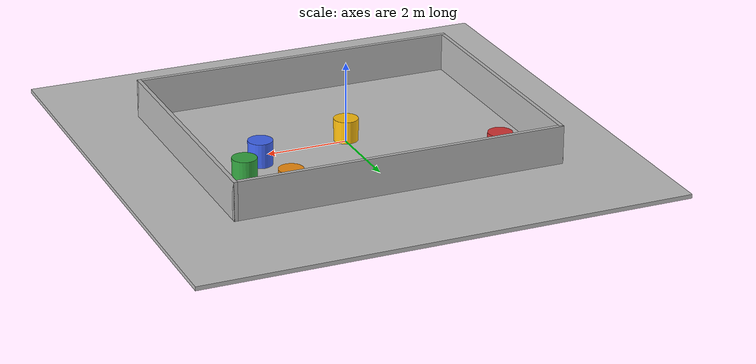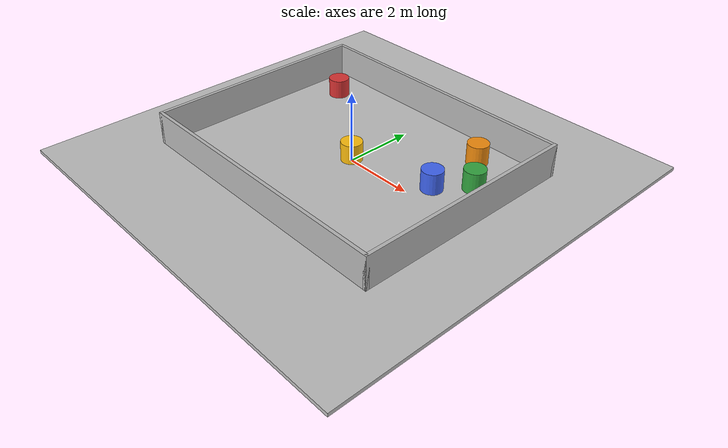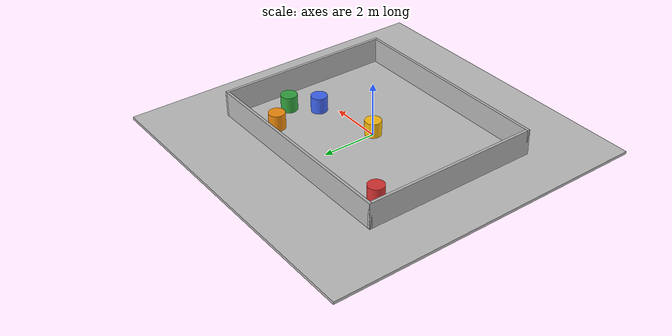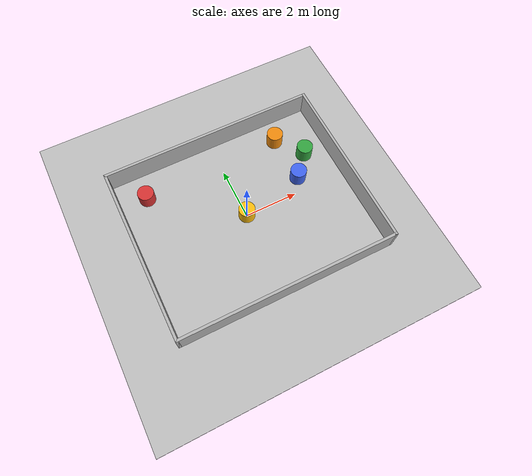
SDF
<?xml version="1.0" ?>
<!-- M1-sized holonomic room with static and moving cylinder obstacles. -->
<!-- The M1 robot itself is spawned from yahboomcar_M1_gazebo.urdf.xacro by
     m1_gazebo.launch.py. -->
<sdf version="1.9">
  <world name="m1">
    <physics name="1ms" type="ignored">
      <max_step_size>0.001</max_step_size>
      <real_time_factor>1.0</real_time_factor>
    </physics>
    <plugin filename="ignition-gazebo-physics-system"
            name="ignition::gazebo::systems::Physics"/>
    <plugin filename="ignition-gazebo-user-commands-system"
            name="ignition::gazebo::systems::UserCommands"/>
    <plugin filename="ignition-gazebo-scene-broadcaster-system"
            name="ignition::gazebo::systems::SceneBroadcaster"/>
    <plugin filename="ignition-gazebo-sensors-system"
            name="ignition::gazebo::systems::Sensors">
      <render_engine>ogre2</render_engine>
    </plugin>
    <light type="directional" name="sun">
      <pose>0 0 10 0 0 0</pose>
      <diffuse>0.8 0.8 0.8 1</diffuse>
      <direction>-0.5 0.1 -0.9</direction>
    </light>

    <model name="ground">
      <static>true</static>
      <link name="link">
        <collision name="collision">
          <geometry><box><size>12 12 0.1</size></box></geometry>
          <surface>
            <friction>
              <ode>
                <!-- Match the high-friction ground used by Gazebo's
                     reference MecanumDrive example. -->
                <mu>50.0</mu>
              </ode>
            </friction>
          </surface>
        </collision>
        <visual name="visual">
          <geometry><box><size>12 12 0.1</size></box></geometry>
          <material><diffuse>0.75 0.75 0.75 1</diffuse></material>
        </visual>
      </link>
    </model>

    <model name="wall_north">
      <pose>0 3.25 0.5 0 0 0</pose>
      <static>true</static>
      <link name="link">
        <collision name="collision">
          <geometry><box><size>8.2 0.1 1</size></box></geometry>
        </collision>
        <visual name="visual">
          <geometry><box><size>8.2 0.1 1</size></box></geometry>
        </visual>
      </link>
    </model>
    <model name="wall_south">
      <pose>0 -3.25 0.5 0 0 0</pose>
      <static>true</static>
      <link name="link">
        <collision name="collision">
          <geometry><box><size>8.2 0.1 1</size></box></geometry>
        </collision>
        <visual name="visual">
          <geometry><box><size>8.2 0.1 1</size></box></geometry>
        </visual>
      </link>
    </model>
    <model name="wall_east">
      <pose>4.05 0 0.5 0 0 0</pose>
      <static>true</static>
      <link name="link">
        <collision name="collision">
          <geometry><box><size>0.1 6.6 1</size></box></geometry>
        </collision>
        <visual name="visual">
          <geometry><box><size>0.1 6.6 1</size></box></geometry>
        </visual>
      </link>
    </model>
    <model name="wall_west">
      <pose>-4.05 0 0.5 0 0 0</pose>
      <static>true</static>
      <link name="link">
        <collision name="collision">
          <geometry><box><size>0.1 6.6 1</size></box></geometry>
        </collision>
        <visual name="visual">
          <geometry><box><size>0.1 6.6 1</size></box></geometry>
        </visual>
      </link>
    </model>

    <!-- This cylinder lies on the direct start-to-goal line, so reaching the
         goal requires a genuine static-obstacle detour. -->
    <model name="static_obstacle_1">
      <pose>-3.0 2.2 0.3 0 0 0</pose>
      <static>true</static>
      <link name="link">
        <collision name="collision">
          <geometry><cylinder><radius>0.3</radius><length>0.6</length></cylinder></geometry>
        </collision>
        <visual name="visual">
          <geometry><cylinder><radius>0.3</radius><length>0.6</length></cylinder></geometry>
          <material><diffuse>0.85 0.2 0.2 1</diffuse></material>
        </visual>
      </link>
    </model>
    <!-- Keep the M1 spawn clear; this obstacle tests MPPI detouring in the
         middle of the standard start-to-goal route. -->
    <model name="static_obstacle_2">
      <pose>0.0 0.0 0.3 0 0 0</pose>
      <static>true</static>
      <link name="link">
        <collision name="collision">
          <geometry><cylinder><radius>0.3</radius><length>0.6</length></cylinder></geometry>
        </collision>
        <visual name="visual">
          <geometry><cylinder><radius>0.3</radius><length>0.6</length></cylinder></geometry>
          <material><diffuse>1 0.75 0.05 1</diffuse></material>
        </visual>
      </link>
    </model>
    <!-- Visual-only marker for the planner goal = (2.5, 1.5). -->
    <model name="goal_marker">
      <pose>2.5 1.5 0.02 0 0 0</pose>
      <static>true</static>
      <link name="link">
        <visual name="visual">
          <visibility_flags>0x01</visibility_flags>
          <geometry><cylinder><radius>0.20</radius><length>0.03</length></cylinder></geometry>
          <material>
            <diffuse>1 0.85 0.05 1</diffuse>
            <emissive>0.5 0.4 0 1</emissive>
          </material>
        </visual>
      </link>
    </model>

    <model name="moving_obstacle_1">
      <pose>2.35 2.35 0.35 0 0 0</pose>
      <link name="link">
        <gravity>false</gravity>
        <kinematic>true</kinematic>
        <inertial>
          <mass>100.0</mass>
          <inertia><ixx>3.0</ixx><iyy>3.0</iyy><izz>3.0</izz></inertia>
        </inertial>
        <collision name="collision">
          <geometry><cylinder><radius>0.3</radius><length>0.6</length></cylinder></geometry>
        </collision>
        <visual name="visual">
          <geometry><cylinder><radius>0.3</radius><length>0.6</length></cylinder></geometry>
          <material><diffuse>0.95 0.55 0.05 1</diffuse></material>
        </visual>
      </link>
      <plugin filename="ignition-gazebo-velocity-control-system"
              name="ignition::gazebo::systems::VelocityControl"/>
    </model>
    <model name="moving_obstacle_2">
      <pose>3.10 1.35 0.35 0 0 0</pose>
      <link name="link">
        <gravity>false</gravity>
        <kinematic>true</kinematic>
        <inertial>
          <mass>100.0</mass>
          <inertia><ixx>3.0</ixx><iyy>3.0</iyy><izz>3.0</izz></inertia>
        </inertial>
        <collision name="collision">
          <geometry><cylinder><radius>0.3</radius><length>0.6</length></cylinder></geometry>
        </collision>
        <visual name="visual">
          <geometry><cylinder><radius>0.3</radius><length>0.6</length></cylinder></geometry>
          <material><diffuse>0.2 0.65 0.25 1</diffuse></material>
        </visual>
      </link>
      <plugin filename="ignition-gazebo-velocity-control-system"
              name="ignition::gazebo::systems::VelocityControl"/>
    </model>
    <model name="moving_obstacle_3">
      <pose>2.40 0.55 0.35 0 0 0</pose>
      <link name="link">
        <gravity>false</gravity>
        <kinematic>true</kinematic>
        <inertial>
          <mass>100.0</mass>
          <inertia><ixx>3.0</ixx><iyy>3.0</iyy><izz>3.0</izz></inertia>
        </inertial>
        <collision name="collision">
          <geometry><cylinder><radius>0.3</radius><length>0.6</length></cylinder></geometry>
        </collision>
        <visual name="visual">
          <geometry><cylinder><radius>0.3</radius><length>0.6</length></cylinder></geometry>
          <material><diffuse>0.25 0.4 0.95 1</diffuse></material>
        </visual>
      </link>
      <plugin filename="ignition-gazebo-velocity-control-system"
              name="ignition::gazebo::systems::VelocityControl"/>
    </model>
  </world>
</sdf>
